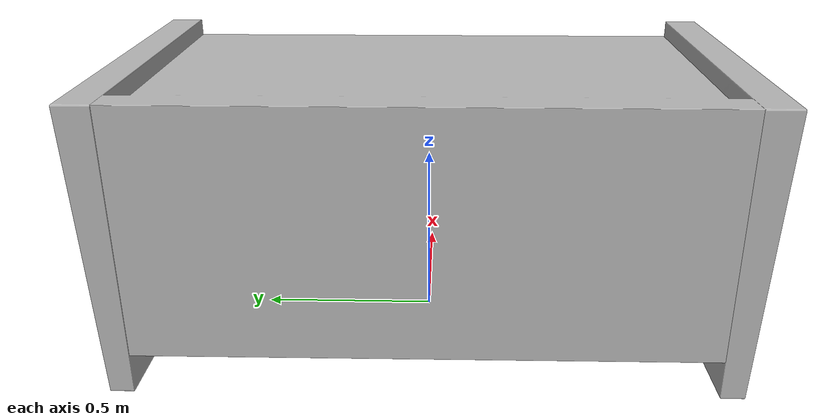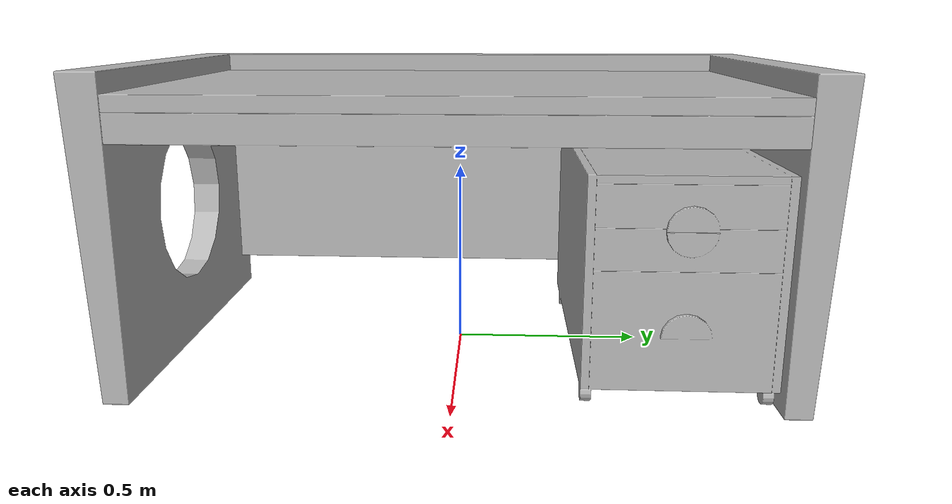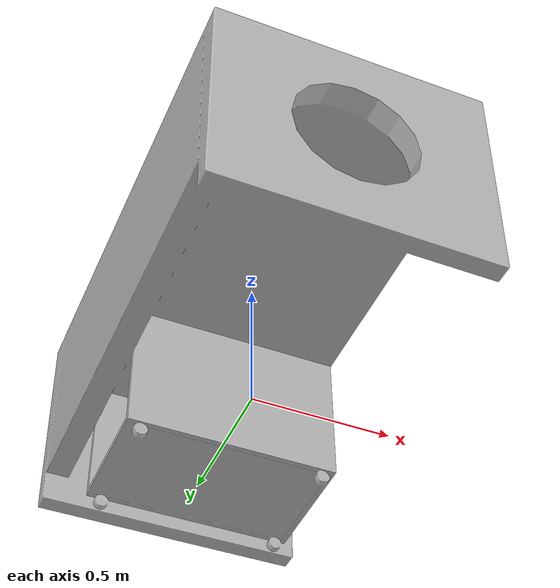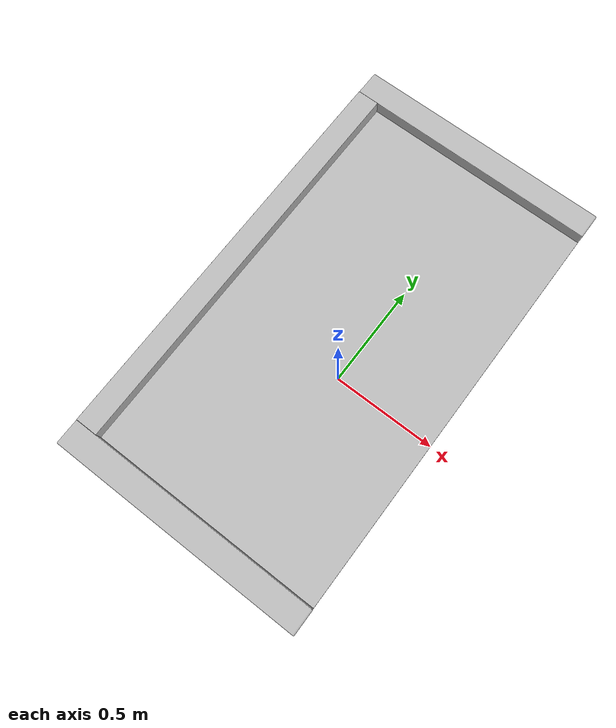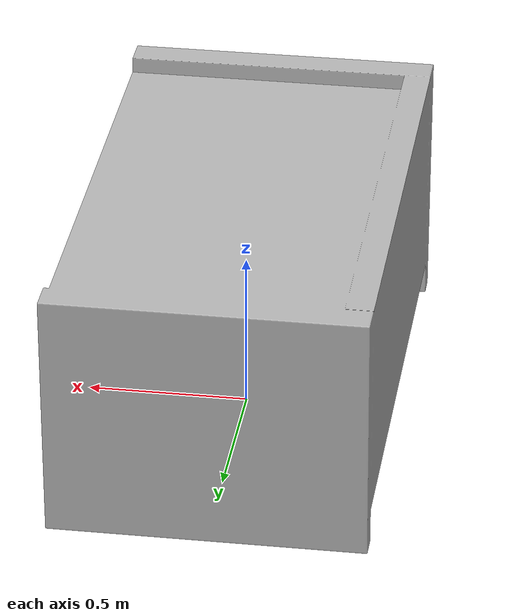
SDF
<?xml version='1.0'?>
<sdf version='1.4'>
  <model name='430'>
    <pose>0 0 0 0 0 0</pose>
    <static>true</static>
    <link name='link'>
      <collision name='collision'>
        <pose>0 0 0 0 0 0</pose>
        <geometry>
          <box>
            <size>0.970014 1.72969 2</size>
          </box>
        </geometry>
      </collision>
      <visual name='visual'>
        <pose>0 0 0 0 0 0</pose>
        <geometry>
          <mesh><uri>model://430/430.dae</uri></mesh>
        </geometry>
      </visual>
    </link>
  </model>
</sdf>
